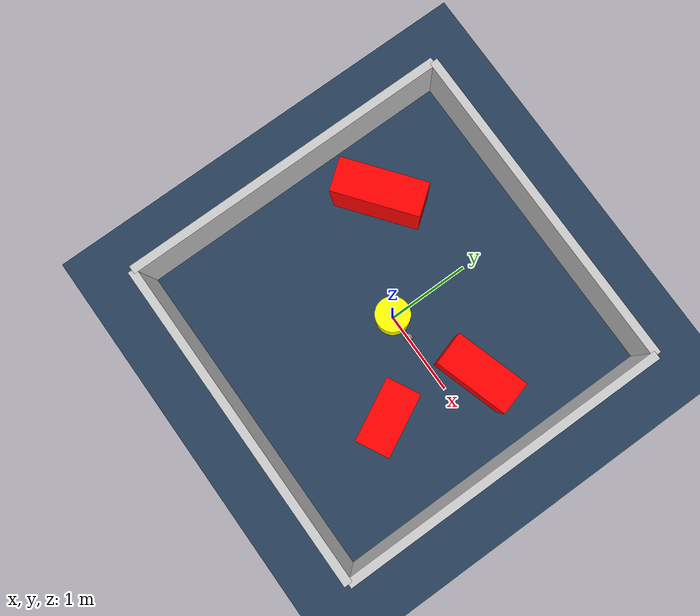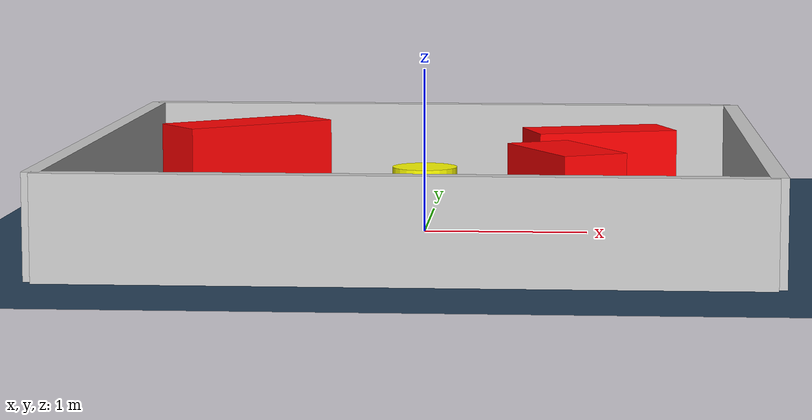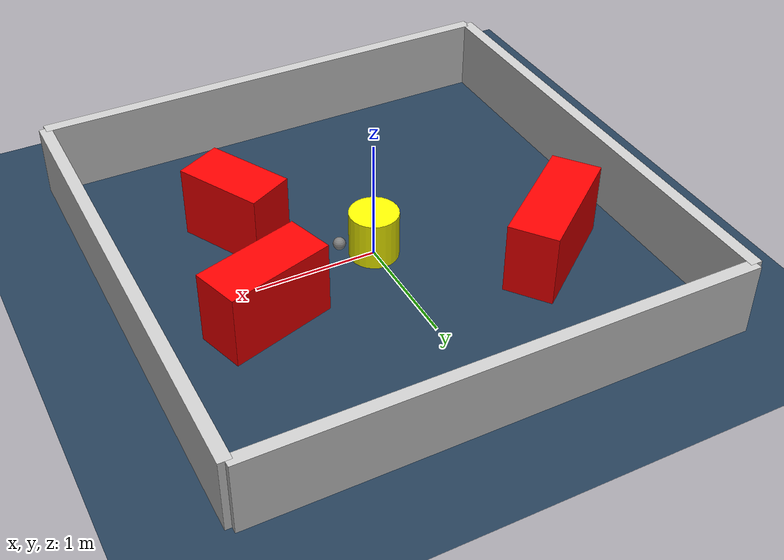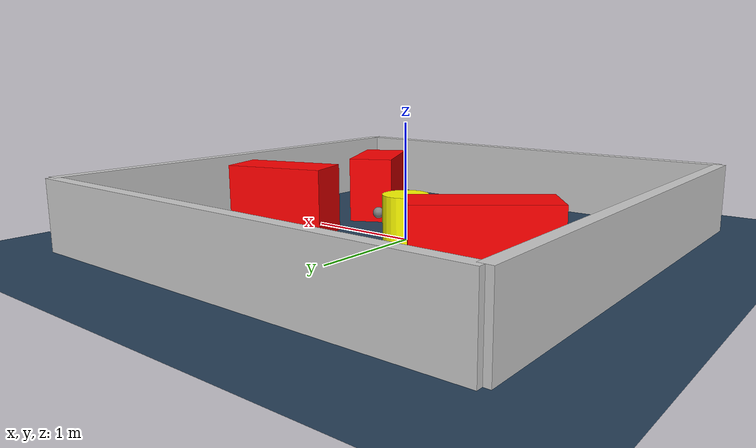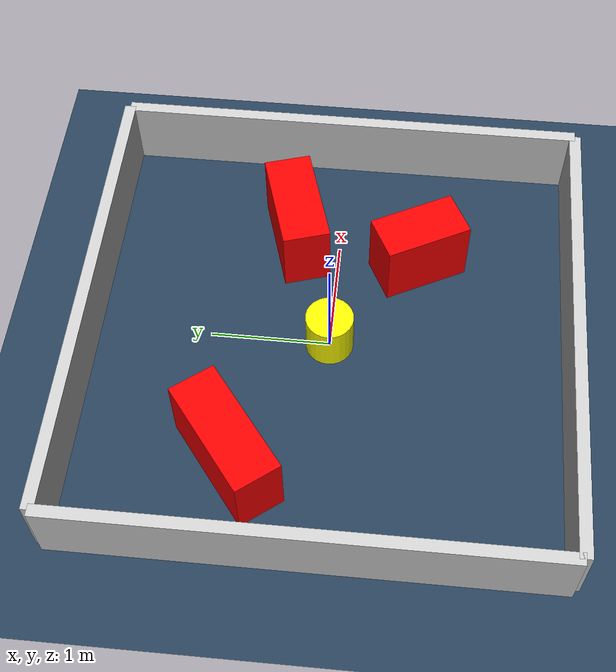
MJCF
<?xml version="1.0" ?>
<mujoco model="generated_environment">
  <option timestep="0.01" integrator="RK4" cone="elliptic"/>
  <default>
    <geom density="1"/>
  </default>
  <asset>
    <texture builtin="gradient" height="3072" rgb1="0.3 0.5 0.7" rgb2="0 0 0" type="skybox" width="512"/>
    <texture builtin="checker" height="300" mark="edge" markrgb="0.8 0.8 0.8" name="groundplane" rgb1="0.2 0.3 0.4" rgb2="0.1 0.2 0.3" type="2d" width="300"/>
    <material name="groundplane" reflectance="0.2" texrepeat="5 5" texture="groundplane" texuniform="true"/>
    <material name="robot" rgba="0.0 1.0 0.0 1"/>
  </asset>
  <worldbody>
    <light dir="0 0 -1" directional="true" pos="0 0 1.5"/>
    <geom condim="4" friction="1.0 0.005 0.001" material="groundplane" name="floor" size="0 0 0.05" type="plane"/>
    <body name="walls">
      <geom name="wall_1" condim="4" pos="-2.0 0.0 0.3" rgba="0.800000011920929 0.800000011920929 0.800000011920929 1.0" size="0.05 2.0 0.3" type="box"/>
      <geom name="wall_2" condim="4" pos="2.0 0.0 0.3" rgba="0.800000011920929 0.800000011920929 0.800000011920929 1.0" size="0.05 2.0 0.3" type="box"/>
      <geom name="wall_3" condim="4" pos="0.0 -2.0 0.3" rgba="0.800000011920929 0.800000011920929 0.800000011920929 1.0" size="2.0 0.05 0.3" type="box"/>
      <geom name="wall_4" condim="4" pos="0.0 2.0 0.3" rgba="0.800000011920929 0.800000011920929 0.800000011920929 1.0" size="2.0 0.05 0.3" type="box"/>
    </body>
    <body name="robot">
      <joint name="joint_x" type="slide" pos="0 0 0" axis="1 0 0"/>
      <joint name="joint_y" type="slide" pos="0 0 0" axis="0 1 0"/>
      <geom name="robot" type="sphere" pos="0.3 0.0 0.2" size="0.05" mass="5." friction="1.0 0.005 0.0001" condim="4" rgba="0.5 0.5 0.5 1.0"/>
      <site name="sensor_ball"/>
    </body>
    <body name="obstacle_movable_1">
      <geom name="obstacle_movable_1" condim="4" pos="0.0 0.0 0.2" euler="0 0 0.0" friction="1.0 0.005 0.001" rgba="1.0 1.0 0.0 1.0" size="0.2 0.2 0.0" type="cylinder" mass="0.1"/>
      <joint type="free"/>
    </body>
    <body name="obstacle_2_static">
      <geom name="obstacle_2_static" condim="4" pos="0.8703316175911624 -0.687980678214279 0.3" euler="0 0 297.48840310435486" friction="1.0 0.005 0.001" rgba="1 0 0 1" size="0.37152194975713815 0.2 0.3" type="box"/>
    </body>
    <body name="obstacle_3_static">
      <geom name="obstacle_3_static" condim="4" pos="1.0743976299794324 0.38376261836328784 0.3" euler="0 0 197.15892119548906" friction="1.0 0.005 0.001" rgba="1 0 0 1" size="0.4435146759343539 0.2 0.3" type="box"/>
    </body>
    <body name="obstacle_4_static">
      <geom name="obstacle_4_static" condim="4" pos="-1.1941818101498118 0.6869600918506344 0.3" euler="0 0 217.65398045146733" friction="1.0 0.005 0.001" rgba="1 0 0 1" size="0.5137106723315857 0.2 0.3" type="box"/>
    </body>
  </worldbody>
  <actuator>
    <motor name="actuator_x" joint="joint_x" gear="1" ctrlrange="-1 1"/>
    <motor name="actuator_y" joint="joint_y" gear="1" ctrlrange="-1 1"/>
  </actuator>
</mujoco>
